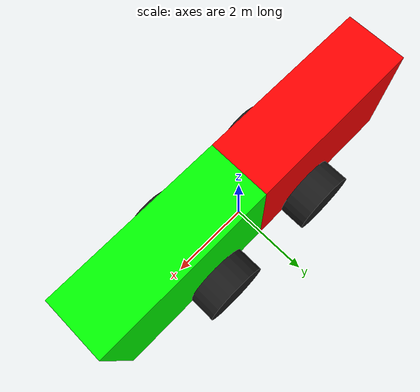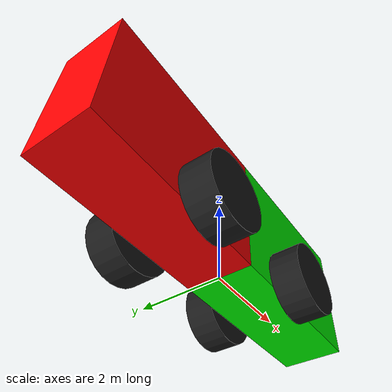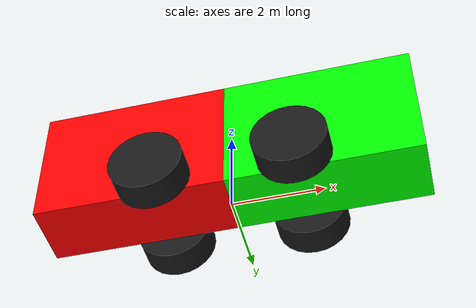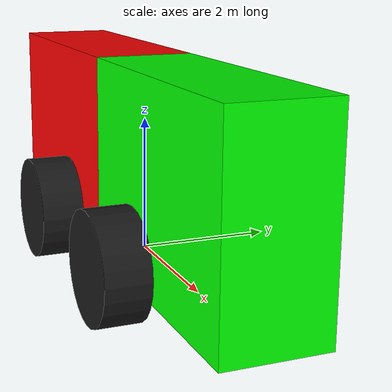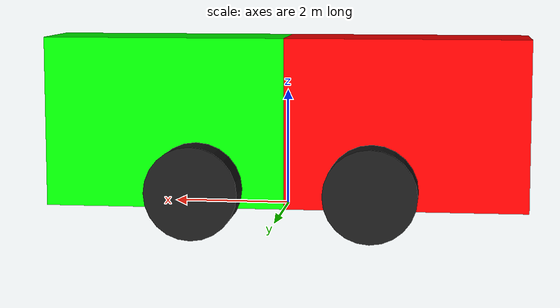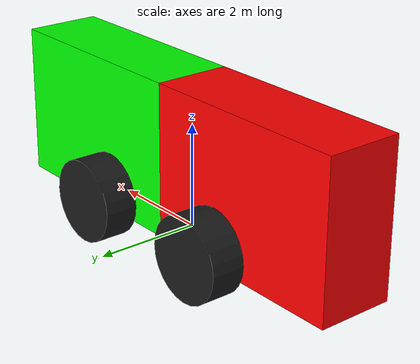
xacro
<?xml version="1.0"?>
<robot name="komatsu" xmlns:xacro="http://www.ros.org/wiki/xacro">

    <xacro:include filename="$(find my_robot_description)/urdf/common_properties.xacro"/>
    <xacro:include filename="$(find my_robot_description)/urdf/wheels.xacro"/>

    <material name="grey"><color rgba="0.7 0.7 0.7 1.0"/></material>
    <material name="black"><color rgba="0.1 0.1 0.1 1.0"/></material>
    <material name="green"><color rgba="0.0 1.0 0.0 1.0"/></material>
    <material name="red"><color rgba="1.0 0.0 0.0 1.0"/></material>

  <!-- ===== Dimensions ===== -->
  <xacro:property name="A_len" value="8.350"/>
  <xacro:property name="B_wheelbase" value="3.030"/>
  <xacro:property name="D_width" value="2.765"/>
  <xacro:property name="E_track" value="2.160"/>
  <xacro:property name="F_clearance" value="0.455"/>
  <xacro:property name="H_height" value="3.395"/>
  <xacro:property name="X_len" value="2.660"/> <!-- axes to front and axes to rear -->

  <xacro:property name="half_wb" value="${B_wheelbase/2.0}"/>
  <xacro:property name="wheel_radius" value="0.80"/>
  <xacro:property name="wheel_width" value="0.65"/>
  <xacro:property name="wheel_y" value="${E_track/2.0}"/>

  <xacro:property name="rear_box_len" value="${X_len + half_wb}"/>
  <xacro:property name="front_box_len" value="${X_len + half_wb}"/>
  <xacro:property name="box_w" value="${D_width-(2*wheel_width)}"/>
  <xacro:property name="box_h" value="${H_height-F_clearance}"/>

    <xacro:property name="rbox_h" value="${H_height-F_clearance}"/>
    <xacro:property name="fbox_h" value="${H_height-F_clearance}"/>

    <!-- base link (physical root / articulation center reference) -->
    <link name="base_link"/>

    <!-- Ground-projected reference frame (no visual/collision/inertial) -->
    <link name="base_footprint"/>

    <joint name="base_footprint_joint" type="fixed">
        <parent link="base_link"/>
        <child link="base_footprint"/>
        <origin xyz="0 0 ${-F_clearance}" rpy="0 0 0"/>
    </joint>

    <!-- articulation center -->
    <link name="articulation_link">
        <inertial>
            <mass value="0.01"/>
            <origin xyz="0 0 0"/>
            <inertia ixx="0.001" ixy="0" ixz="0" iyy="0.001" iyz="0" izz="0.001"/>
        </inertial>
    </link>

    <joint name="base_to_articulation_joint" type="fixed">
        <parent link="base_link"/>
        <child link="articulation_link"/>
    </joint>

    <!-- rear body -->
    <link name="rear_chassis">
        <visual>
            <origin xyz="${-rear_box_len/2.0} 0 ${rbox_h/2.0}"/>
            <geometry><box size="${rear_box_len} ${box_w} ${rbox_h}"/></geometry>
            <material name="red"/>
        </visual>

        <collision>
            <origin xyz="${-rear_box_len/2.0} 0 ${rbox_h/2.0}"/>
            <geometry><box size="${rear_box_len} ${box_w} ${rbox_h}"/></geometry>
        </collision>

        <xacro:box_inertia
            m="500.0"
            x="${rear_box_len}"
            y="${box_w}"
            z="${rbox_h}"
            o_xyz="${-rear_box_len/2.0} 0 ${rbox_h/2.0}"
            o_rpy="0 0 0"/>
    </link>

    <!-- front body -->
    <link name="front_chassis">
        <visual>
            <origin xyz="${front_box_len/2.0} 0 ${fbox_h/2.0}"/>
            <geometry><box size="${front_box_len} ${box_w} ${fbox_h}"/></geometry>
            <material name="green"/>
        </visual>

        <collision>
            <origin xyz="${front_box_len/2.0} 0 ${fbox_h/2.0}"/>
            <geometry><box size="${front_box_len} ${box_w} ${fbox_h}"/></geometry>
        </collision>

        <xacro:box_inertia
            m="500.0"
            x="${front_box_len}"
            y="${box_w}"
            z="${fbox_h}"
            o_xyz="${front_box_len/2.0} 0 ${fbox_h/2.0}"
            o_rpy="0 0 0"/>
    </link>

    <!-- articulation joints - TEMPORARILY FIXED FOR STABILITY, will be revolute with steering control -->
    <joint name="articulation_to_front" type="fixed">
        <parent link="articulation_link"/>
        <child link="front_chassis"/>
        <origin xyz="0 0 0" rpy="0 0 0"/>
    </joint>

    <joint name="articulation_to_rear" type="fixed">
        <parent link="articulation_link"/>
        <child link="rear_chassis"/>
        <origin xyz="0 0 0" rpy="0 0 0"/>
    </joint>

  <!-- ===== Wheel macro ===== -->

  <xacro:wheel name="rear_left_wheel"  parent="rear_chassis" x="${-half_wb}" y="${ wheel_y}" z="${wheel_radius - F_clearance}"/>
  <xacro:wheel name="rear_right_wheel" parent="rear_chassis" x="${-half_wb}" y="${-wheel_y}" z="${wheel_radius - F_clearance}"/>

  <xacro:wheel name="front_left_wheel"  parent="front_chassis" x="${ half_wb}" y="${ wheel_y}" z="${wheel_radius - F_clearance}"/>
  <xacro:wheel name="front_right_wheel" parent="front_chassis" x="${ half_wb}" y="${-wheel_y}" z="${wheel_radius - F_clearance}"/>

  <!-- ===== Navigation reference frames ===== -->

  <link name="base_front"/>
  <joint name="base_front_joint" type="fixed">
    <parent link="front_chassis"/>
    <child link="base_front"/>
    <origin xyz="${half_wb} 0 0" rpy="0 0 0"/>
  </joint>

  <link name="base_rear"/>
  <joint name="base_rear_joint" type="fixed">
    <parent link="rear_chassis"/>
    <child link="base_rear"/>
    <origin xyz="${-half_wb} 0 0" rpy="0 0 0"/>
  </joint>

  <!-- ===== Sensors ===== -->

  <link name="laser_frame"/>
  <joint name="laser_joint" type="fixed">
    <parent link="rear_chassis"/>
    <child link="laser_frame"/>
      <origin xyz="0.0 0.0 ${box_h + 0.3}" rpy="0 0 0"/> <!-- lidar 30 cm above the cabin -->
  </joint>

  <link name="imu_link"/>
  <joint name="imu_joint" type="fixed">
    <parent link="base_link"/>
    <child link="imu_link"/>
    <origin xyz="0 0 0" rpy="0 0 0"/>
  </joint>

</robot>

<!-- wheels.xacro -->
<robot xmlns:xacro="http://www.ros.org/wiki/xacro">

  <!-- ===== Wheel Macro ===== -->
  <xacro:macro name="wheel" params="name parent x y z:=0.80 radius:=0.80 width:=0.65">
    <link name="${name}">
      <visual>
        <origin xyz="0 0 0" rpy="1.57079632679 0 0"/>
        <geometry>
          <cylinder radius="${radius}" length="${width}"/>
        </geometry>
        <material name="black"/>
      </visual>
      <collision>
        <origin xyz="0 0 0" rpy="1.57079632679 0 0"/>
        <geometry>
          <cylinder radius="${radius}" length="${width}"/>
        </geometry>
      </collision>
      <xacro:cylinder_inertia m="50.0"
                              r="${radius}"
                              l="${width}"
                              o_xyz="0 0 0"
                              o_rpy="0 0 0"/>
    </link>

    <joint name="${name}_joint" type="continuous">
      <parent link="${parent}"/>
      <child link="${name}"/>
      <origin xyz="${x} ${y} ${z}" rpy="0 0 0"/>
      <axis xyz="0 1 0"/>
    </joint>
  </xacro:macro>

</robot>
